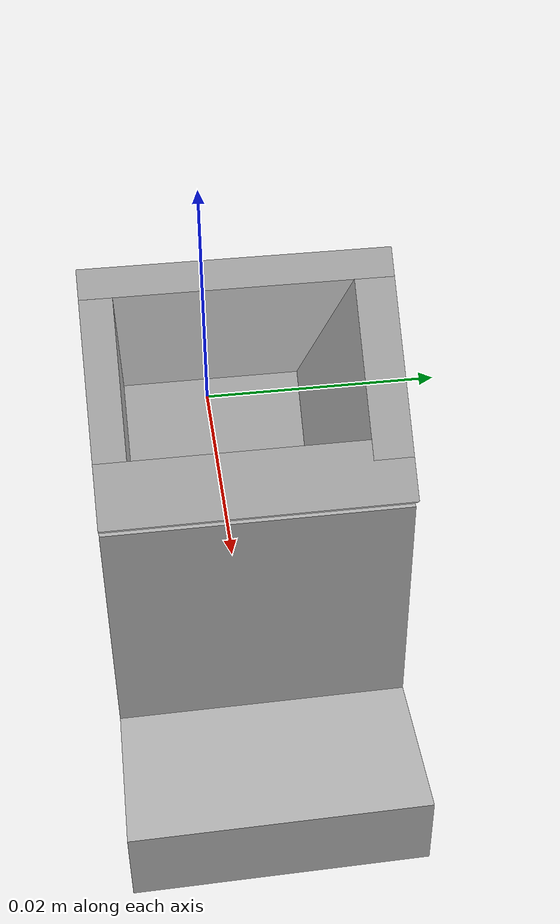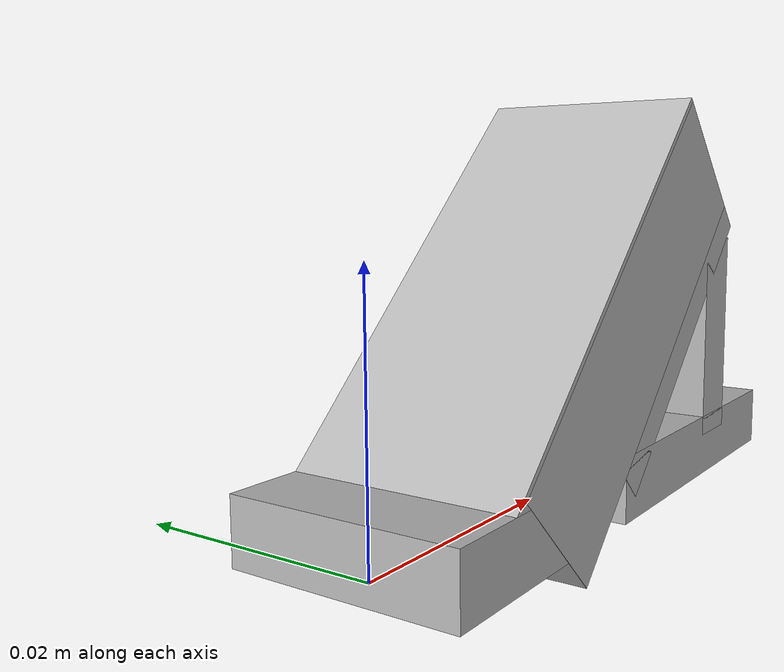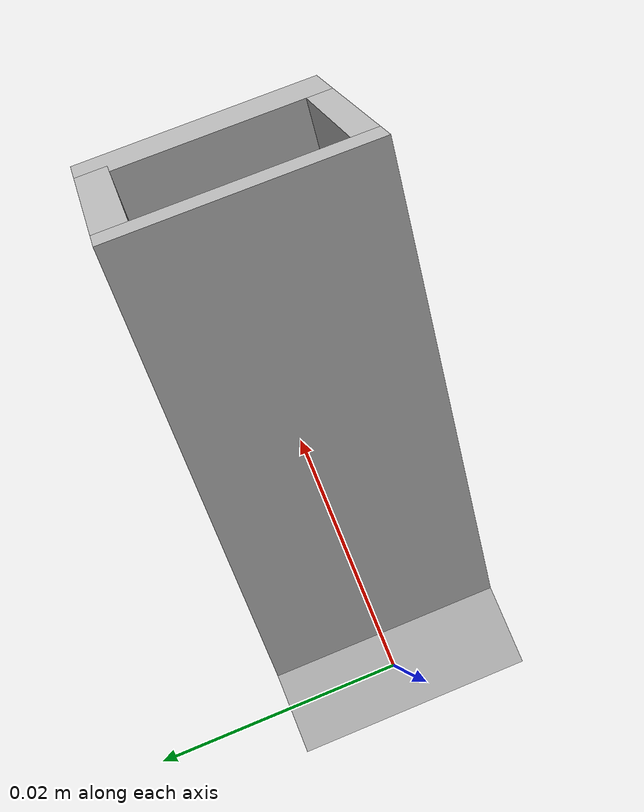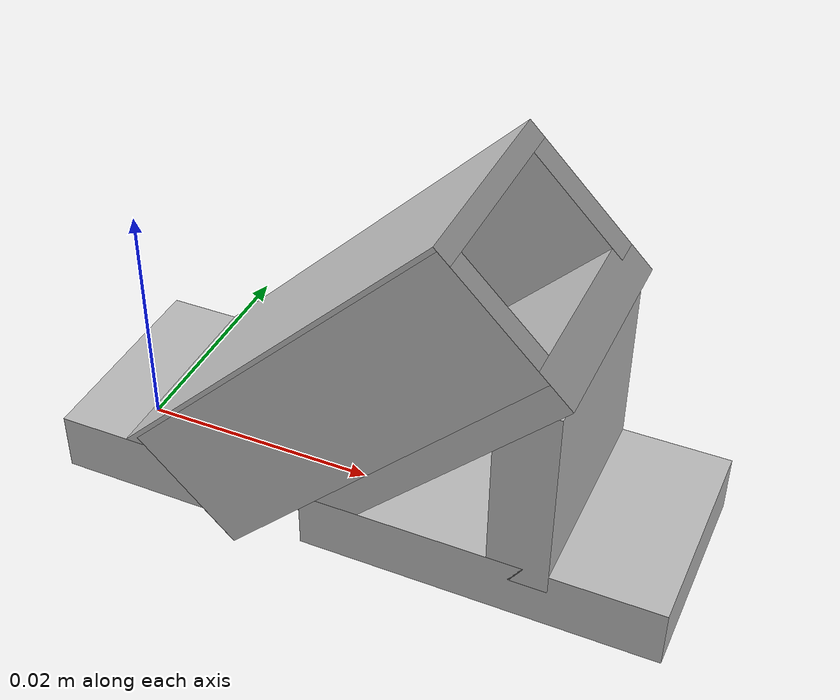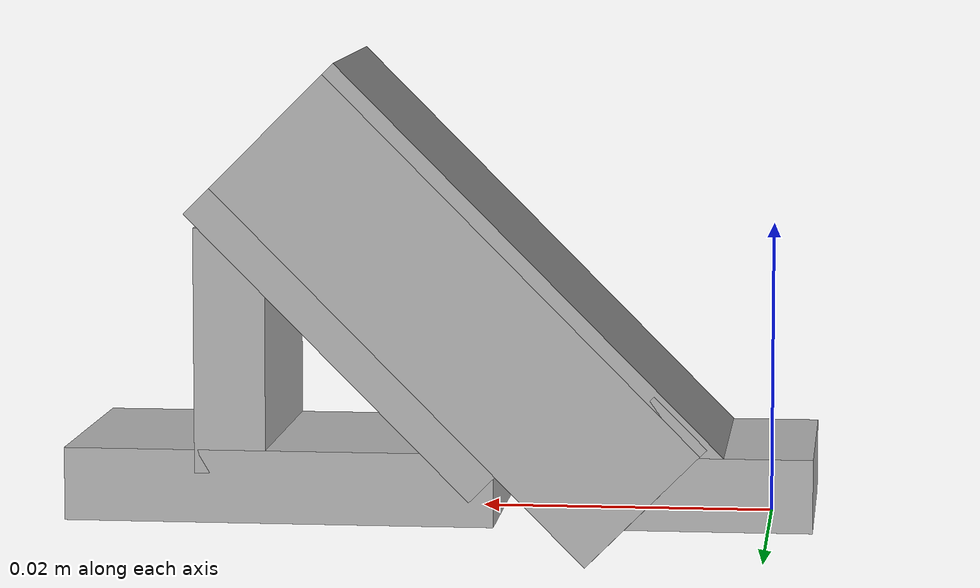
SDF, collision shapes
<?xml version="1.0" ?>
<sdf version="1.9">
  <model name="SFP Mount">
    <static>true</static>
    <link name="sfp_mount_link">
      <visual name="sfp_mount_visual">
        <geometry>
          <mesh>
            <uri>sfp_mount_visual.glb</uri>
          </mesh>
        </geometry>
      </visual>
      <collision name="iso 4762 - m2 x 8072_collider_box">
        <pose>0.033272 -0.0 0.0025 0.0 -0.0 0.0</pose>
        <geometry>
          <box>
            <size>0.029457 0.01775 0.005</size>
          </box>
        </geometry>
      </collision>
      <collision name="iso 4762 - m2 x 8072_collider_box.001">
        <pose>0.016366 -0.0 0.017144 0.0 -0.785398 0.0</pose>
        <geometry>
          <box>
            <size>0.038533 0.01775 0.001728</size>
          </box>
        </geometry>
      </collision>
      <collision name="iso 4762 - m2 x 8072_collider_box.002">
        <pose>0.028636 -0.0 0.012684 0.0 -0.785398 0.0</pose>
        <geometry>
          <box>
            <size>0.027485 0.01775 0.003688</size>
          </box>
        </geometry>
      </collision>
      <collision name="iso 4762 - m2 x 8072_collider_box.003">
        <pose>0.021242 0.007723 0.013979 0.0 -0.785398 0.0</pose>
        <geometry>
          <box>
            <size>0.036111 0.002305 0.010956</size>
          </box>
        </geometry>
      </collision>
      <collision name="iso 4762 - m2 x 8072_collider_box.004">
        <pose>0.021003 -0.007938 0.014217 0.0 -0.785398 0.0</pose>
        <geometry>
          <box>
            <size>0.036111 0.001875 0.01163</size>
          </box>
        </geometry>
      </collision>
      <collision name="iso 4762 - m2 x 8072_collider_box.005">
        <pose>0.010017 -0.0 0.003231 0.0 -0.785398 0.0</pose>
        <geometry>
          <box>
            <size>0.005064 0.01775 0.01163</size>
          </box>
        </geometry>
      </collision>
      <collision name="iso 4762 - m2 x 8072_collider_box.006">
        <pose>0.0042 -0.0 0.0025 0.0 -0.0 0.0</pose>
        <geometry>
          <box>
            <size>0.014371 0.01775 0.005</size>
          </box>
        </geometry>
      </collision>
      <collision name="iso 4762 - m2 x 8072_collider_box.007">
        <pose>0.036553 -0.0 0.011771 0.0 -0.0 0.0</pose>
        <geometry>
          <box>
            <size>0.004893 0.01775 0.016755</size>
          </box>
        </geometry>
      </collision>
    </link>
  </model>
</sdf>
